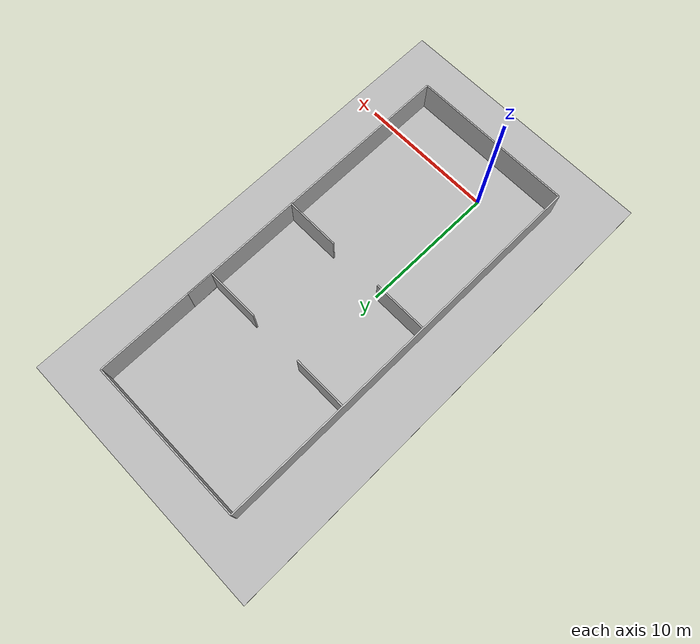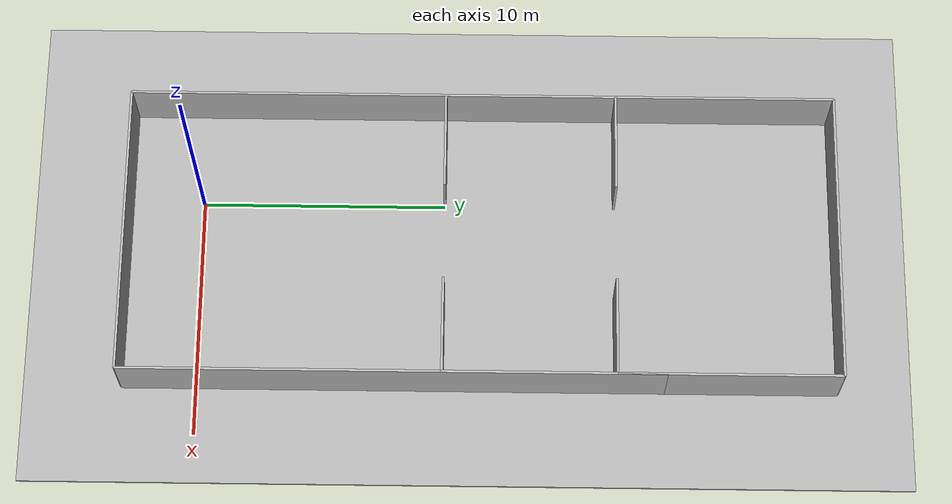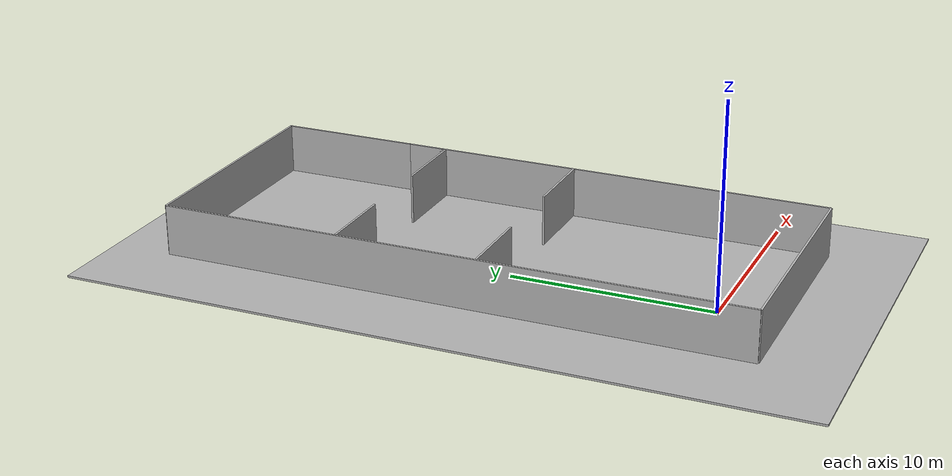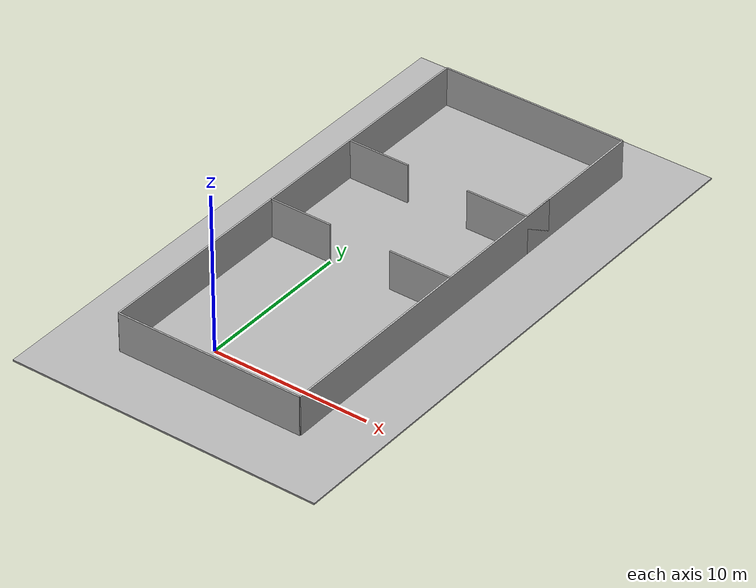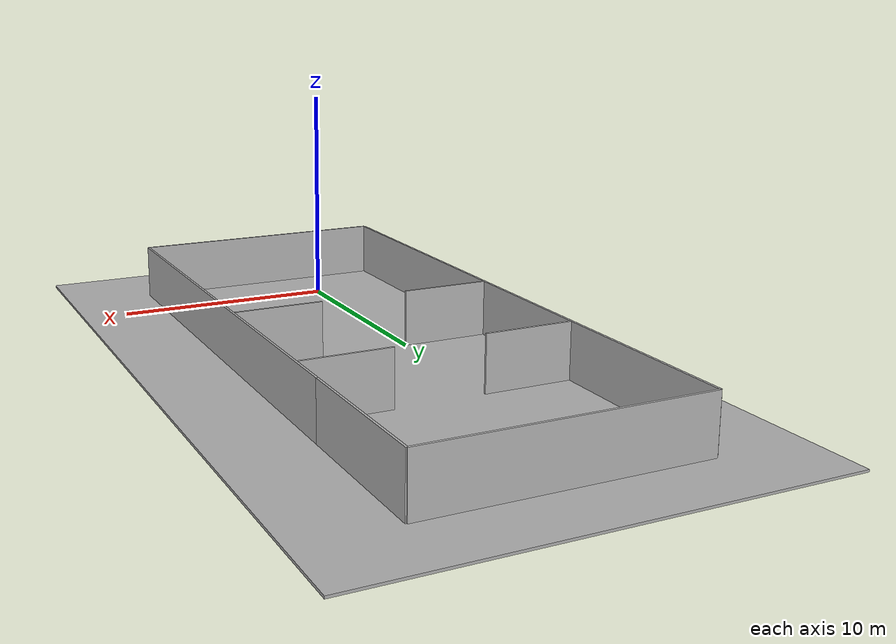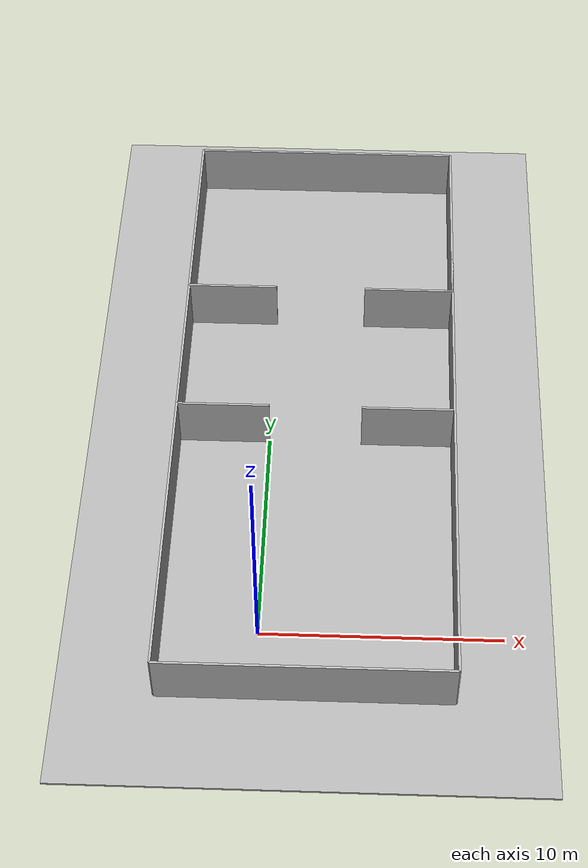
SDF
<sdf version="1.7">
 <world name="combined_scenario">
  <physics type="ode"><max_step_size>0.003</max_step_size><real_time_factor>1.0</real_time_factor></physics>
  <plugin name="gz::sim::systems::Physics" filename="gz-sim-physics-system"/>
  <plugin name="gz::sim::systems::UserCommands" filename="gz-sim-user-commands-system"/>
  <plugin name="gz::sim::systems::SceneBroadcaster" filename="gz-sim-scene-broadcaster-system"/>
  <plugin name="gz::sim::systems::Contact" filename="gz-sim-contact-system"/>
  <light type="directional" name="sun">
   <cast_shadows>0</cast_shadows>
   <pose>-5 -3 10 0 0 0</pose>
   <diffuse>1 1 1 1</diffuse>
   <specular>1 1 1 1</specular>
   <direction>0 0 -1</direction>
  </light>
  <scene><ambient>0.8 0.8 0.8 1</ambient><background>0.9 0.9 0.9 1</background></scene>
  <model name="ground_plane">
   <static>true</static>
   <pose>2 11 0 0 0 0</pose>
   <link name="link">
    <collision name="collision">
     <pose>0 0 -0.05 0 0 0</pose>
     <geometry><box><size>20 36 0.1</size></box></geometry>
    </collision>
    <visual name="visual">
     <pose>0 0 -0.05 0 0 0</pose>
     <geometry><box><size>20 36 0.1</size></box></geometry>
     <material><ambient>0.7 0.7 0.7 1</ambient><diffuse>0.7 0.7 0.7 1</diffuse></material>
    </visual>
   </link>
  </model>
  <model name="wall_west">
   <static>true</static>
   <pose>-4 11.5 1 0 0 0</pose>
   <link name="link">
    <collision name="collision"><geometry><box><size>0.1 29 3</size></box></geometry></collision>
    <visual name="visual"><geometry><box><size>0.1 29 3</size></box></geometry></visual>
   </link>
  </model>
  <model name="wall_east_corridor">
   <static>true</static>
   <pose>8 8 1 0 0 0</pose>
   <link name="link">
    <collision name="collision"><geometry><box><size>0.1 22 3</size></box></geometry></collision>
    <visual name="visual"><geometry><box><size>0.1 22 3</size></box></geometry></visual>
   </link>
  </model>
  <model name="wall_east_room">
   <static>true</static>
   <pose>8 21.5 1 0 0 0</pose>
   <link name="link">
    <collision name="collision"><geometry><box><size>0.1 9 3</size></box></geometry></collision>
    <visual name="visual"><geometry><box><size>0.1 9 3</size></box></geometry></visual>
   </link>
  </model>
  <model name="wall_north">
   <static>true</static>
   <pose>2 26 1 0 0 0</pose>
   <link name="link">
    <collision name="collision"><geometry><box><size>12 0.1 3</size></box></geometry></collision>
    <visual name="visual"><geometry><box><size>12 0.1 3</size></box></geometry></visual>
   </link>
  </model>
  <model name="wall_south">
   <static>true</static>
   <pose>2 -3 1 0 0 0</pose>
   <link name="link">
    <collision name="collision"><geometry><box><size>12 0.1 3</size></box></geometry></collision>
    <visual name="visual"><geometry><box><size>12 0.1 3</size></box></geometry></visual>
   </link>
  </model>
  <model name="baffle_mover_1">
   <static>true</static>
   <pose>-2 10 1 0 0 0</pose>
   <link name="link">
    <collision name="collision"><geometry><box><size>4.0 0.1 3</size></box></geometry></collision>
    <visual name="visual"><geometry><box><size>4.0 0.1 3</size></box></geometry></visual>
   </link>
  </model>
  <model name="baffle_mover_2">
   <static>true</static>
   <pose>6 10 1 0 0 0</pose>
   <link name="link">
    <collision name="collision"><geometry><box><size>4.0 0.1 3</size></box></geometry></collision>
    <visual name="visual"><geometry><box><size>4.0 0.1 3</size></box></geometry></visual>
   </link>
  </model>
  <model name="baffle_queue_1">
   <static>true</static>
   <pose>-2 17 1 0 0 0</pose>
   <link name="link">
    <collision name="collision"><geometry><box><size>4.0 0.1 3</size></box></geometry></collision>
    <visual name="visual"><geometry><box><size>4.0 0.1 3</size></box></geometry></visual>
   </link>
  </model>
  <model name="baffle_queue_2">
   <static>true</static>
   <pose>6 17 1 0 0 0</pose>
   <link name="link">
    <collision name="collision"><geometry><box><size>4.0 0.1 3</size></box></geometry></collision>
    <visual name="visual"><geometry><box><size>4.0 0.1 3</size></box></geometry></visual>
   </link>
  </model>
 </world>
</sdf>
